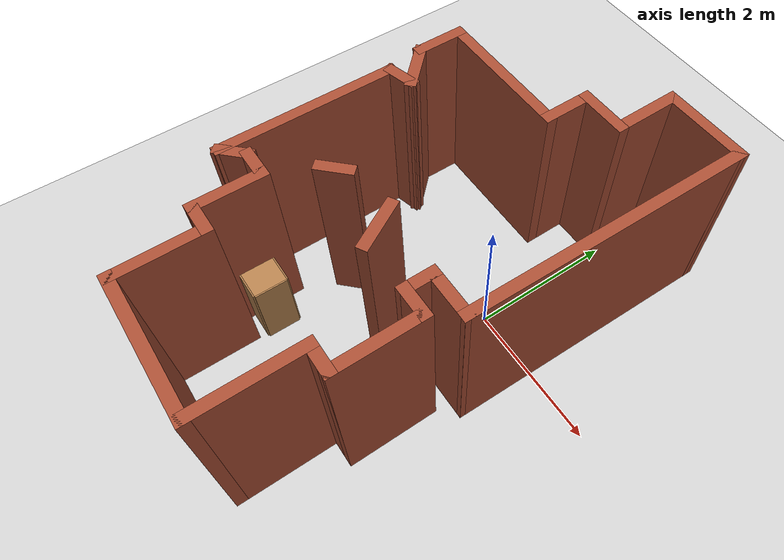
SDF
<sdf version="1.7">
 <world name="default">
  <light name="sun" type="directional">
   <pose>0 0 10 0 -0 0</pose>
   <diffuse>0.8 0.8 0.8 1</diffuse>
   <specular>0.2 0.2 0.2 1</specular>
   <attenuation>
    <range>1000</range>
    <constant>0.9</constant>
    <linear>0.01</linear>
    <quadratic>0.001</quadratic>
   </attenuation>
   <direction>-0.5 0.1 -0.9</direction>
   <spot><inner_angle>0</inner_angle><outer_angle>0</outer_angle><falloff>0</falloff></spot>
  </light>
  <model name="ground_plane">
   <static>1</static>
   <link name="link">
    <collision name="collision">
     <geometry><plane><normal>0 0 1</normal><size>100 100</size></plane></geometry>
     <surface>
      <contact><collide_bitmask>65535</collide_bitmask></contact>
      <friction><ode><mu>100</mu><mu2>50</mu2></ode></friction>
     </surface>
    </collision>
    <visual name="visual">
     <cast_shadows>0</cast_shadows>
     <geometry><plane><normal>0 0 1</normal><size>100 100</size></plane></geometry>
     <material>
      <script><uri>file://media/materials/scripts/gazebo.material</uri><name>Gazebo/Grey</name></script>
     </material>
    </visual>
   </link>
  </model>
  <gravity>0 0 -9.8</gravity>
  <magnetic_field>6e-06 2.3e-05 -4.2e-05</magnetic_field>
  <atmosphere type="adiabatic"/>
  <physics name="default_physics" default="0" type="ode">
   <max_step_size>0.001</max_step_size>
   <real_time_factor>1</real_time_factor>
   <real_time_update_rate>1000</real_time_update_rate>
  </physics>
  <scene><ambient>0.4 0.4 0.4 1</ambient><background>0.7 0.7 0.7 1</background><shadows>1</shadows></scene>
  <audio><device>default</device></audio>
  <spherical_coordinates>
   <surface_model>EARTH_WGS84</surface_model>
   <latitude_deg>0</latitude_deg>
   <longitude_deg>0</longitude_deg>
   <elevation>0</elevation>
   <heading_deg>0</heading_deg>
  </spherical_coordinates>
  <model name="map_2">
   <pose>-0.8371 -0.509078 0 0 -0 0</pose>
   <link name="Wall_10">
    <collision name="Wall_10_Collision">
     <geometry><box><size>2.5 0.15 2.5</size></box></geometry>
     <pose>0 0 1.25 0 -0 0</pose>
    </collision>
    <visual name="Wall_10_Visual">
     <pose>0 0 1.25 0 -0 0</pose>
     <geometry><box><size>2.5 0.15 2.5</size></box></geometry>
     <material>
      <script><uri>file://media/materials/scripts/gazebo.material</uri><name>Gazebo/Bricks</name></script>
      <ambient>1 1 1 1</ambient>
     </material>
     <meta><layer>0</layer></meta>
    </visual>
    <pose>-1.67392 -0.431815 0 0 -0 -1.5708</pose>
   </link>
   <link name="Wall_11">
    <collision name="Wall_11_Collision">
     <geometry><box><size>0.5 0.15 2.5</size></box></geometry>
     <pose>0 0 1.25 0 -0 0</pose>
    </collision>
    <visual name="Wall_11_Visual">
     <pose>0 0 1.25 0 -0 0</pose>
     <geometry><box><size>0.5 0.15 2.5</size></box></geometry>
     <material>
      <script><uri>file://media/materials/scripts/gazebo.material</uri><name>Gazebo/Bricks</name></script>
      <ambient>1 1 1 1</ambient>
     </material>
     <meta><layer>0</layer></meta>
    </visual>
    <pose>-1.55018 -1.48307 0 0 -0 0.785398</pose>
   </link>
   <link name="Wall_12">
    <collision name="Wall_12_Collision">
     <geometry><box><size>0.5 0.15 2.5</size></box></geometry>
     <pose>0 0 1.25 0 -0 0</pose>
    </collision>
    <visual name="Wall_12_Visual">
     <pose>0 0 1.25 0 -0 0</pose>
     <geometry><box><size>0.5 0.15 2.5</size></box></geometry>
     <material>
      <script><uri>file://media/materials/scripts/gazebo.material</uri><name>Gazebo/Bricks</name></script>
      <ambient>1 1 1 1</ambient>
     </material>
     <meta><layer>0</layer></meta>
    </visual>
    <pose>-1.25144 -1.35933 0 0 -0 0</pose>
   </link>
   <link name="Wall_13">
    <collision name="Wall_13_Collision">
     <geometry><box><size>1 0.15 2.5</size></box></geometry>
     <pose>0 0 1.25 0 -0 0</pose>
    </collision>
    <visual name="Wall_13_Visual">
     <pose>0 0 1.25 0 -0 0</pose>
     <geometry><box><size>1 0.15 2.5</size></box></geometry>
     <material>
      <script><uri>file://media/materials/scripts/gazebo.material</uri><name>Gazebo/Bricks</name></script>
      <ambient>1 1 1 1</ambient>
     </material>
     <meta><layer>0</layer></meta>
    </visual>
    <pose>-1.07644 -1.78433 0 0 -0 -1.5708</pose>
   </link>
   <link name="Wall_14">
    <collision name="Wall_14_Collision">
     <geometry><box><size>0.5 0.15 2.5</size></box></geometry>
     <pose>0 0 1.25 0 -0 0</pose>
    </collision>
    <visual name="Wall_14_Visual">
     <pose>0 0 1.25 0 -0 0</pose>
     <geometry><box><size>0.5 0.15 2.5</size></box></geometry>
     <material>
      <script><uri>file://media/materials/scripts/gazebo.material</uri><name>Gazebo/Bricks</name></script>
      <ambient>1 1 1 1</ambient>
     </material>
     <meta><layer>0</layer></meta>
    </visual>
    <pose>-0.901435 -2.20933 0 0 -0 0</pose>
   </link>
   <link name="Wall_15">
    <collision name="Wall_15_Collision">
     <geometry><box><size>1.25 0.15 2.5</size></box></geometry>
     <pose>0 0 1.25 0 -0 0</pose>
    </collision>
    <visual name="Wall_15_Visual">
     <pose>0 0 1.25 0 -0 0</pose>
     <geometry><box><size>1.25 0.15 2.5</size></box></geometry>
     <material>
      <script><uri>file://media/materials/scripts/gazebo.material</uri><name>Gazebo/Bricks</name></script>
      <ambient>1 1 1 1</ambient>
     </material>
     <meta><layer>0</layer></meta>
    </visual>
    <pose>-0.726435 -2.75933 0 0 -0 -1.5708</pose>
   </link>
   <link name="Wall_16">
    <collision name="Wall_16_Collision">
     <geometry><box><size>2 0.15 2.5</size></box></geometry>
     <pose>0 0 1.25 0 -0 0</pose>
    </collision>
    <visual name="Wall_16_Visual">
     <pose>0 0 1.25 0 -0 0</pose>
     <geometry><box><size>2 0.15 2.5</size></box></geometry>
     <material>
      <script><uri>file://media/materials/scripts/gazebo.material</uri><name>Gazebo/Bricks</name></script>
      <ambient>1 1 1 1</ambient>
     </material>
     <meta><layer>0</layer></meta>
    </visual>
    <pose>0.198565 -3.30933 0 0 -0 0</pose>
   </link>
   <link name="Wall_17">
    <collision name="Wall_17_Collision">
     <geometry><box><size>1.5 0.15 2.5</size></box></geometry>
     <pose>0 0 1.25 0 -0 0</pose>
    </collision>
    <visual name="Wall_17_Visual">
     <pose>0 0 1.25 0 -0 0</pose>
     <geometry><box><size>1.5 0.15 2.5</size></box></geometry>
     <material>
      <script><uri>file://media/materials/scripts/gazebo.material</uri><name>Gazebo/Bricks</name></script>
      <ambient>1 1 1 1</ambient>
     </material>
     <meta><layer>0</layer></meta>
    </visual>
    <pose>1.12356 -2.63433 0 0 -0 1.5708</pose>
   </link>
   <link name="Wall_18">
    <collision name="Wall_18_Collision">
     <geometry><box><size>0.5 0.15 2.5</size></box></geometry>
     <pose>0 0 1.25 0 -0 0</pose>
    </collision>
    <visual name="Wall_18_Visual">
     <pose>0 0 1.25 0 -0 0</pose>
     <geometry><box><size>0.5 0.15 2.5</size></box></geometry>
     <material>
      <script><uri>file://media/materials/scripts/gazebo.material</uri><name>Gazebo/Bricks</name></script>
      <ambient>1 1 1 1</ambient>
     </material>
     <meta><layer>0</layer></meta>
    </visual>
    <pose>1.29856 -1.95933 0 0 -0 0</pose>
   </link>
   <link name="Wall_19">
    <collision name="Wall_19_Collision">
     <geometry><box><size>1.25 0.15 2.5</size></box></geometry>
     <pose>0 0 1.25 0 -0 0</pose>
    </collision>
    <visual name="Wall_19_Visual">
     <pose>0 0 1.25 0 -0 0</pose>
     <geometry><box><size>1.25 0.15 2.5</size></box></geometry>
     <material>
      <script><uri>file://media/materials/scripts/gazebo.material</uri><name>Gazebo/Bricks</name></script>
      <ambient>1 1 1 1</ambient>
     </material>
     <meta><layer>0</layer></meta>
    </visual>
    <pose>1.47357 -1.40933 0 0 -0 1.5708</pose>
   </link>
   <link name="Wall_2">
    <collision name="Wall_2_Collision">
     <geometry><box><size>1.25 0.15 2.5</size></box></geometry>
     <pose>0 0 1.25 0 -0 0</pose>
    </collision>
    <visual name="Wall_2_Visual">
     <pose>0 0 1.25 0 -0 0</pose>
     <geometry><box><size>1.25 0.15 2.5</size></box></geometry>
     <material>
      <script><uri>file://media/materials/scripts/gazebo.material</uri><name>Gazebo/Bricks</name></script>
      <ambient>1 1 1 1</ambient>
     </material>
     <meta><layer>0</layer></meta>
    </visual>
    <pose>1.23989 3.30804 0 0 -0 3.14159</pose>
   </link>
   <link name="Wall_20">
    <collision name="Wall_20_Collision">
     <geometry><box><size>0.5 0.15 2.5</size></box></geometry>
     <pose>0 0 1.25 0 -0 0</pose>
    </collision>
    <visual name="Wall_20_Visual">
     <pose>0 0 1.25 0 -0 0</pose>
     <geometry><box><size>0.5 0.15 2.5</size></box></geometry>
     <material>
      <script><uri>file://media/materials/scripts/gazebo.material</uri><name>Gazebo/Bricks</name></script>
      <ambient>1 1 1 1</ambient>
     </material>
     <meta><layer>0</layer></meta>
    </visual>
    <pose>1.29856 -0.859327 0 0 -0 3.14159</pose>
   </link>
   <link name="Wall_21">
    <collision name="Wall_21_Collision">
     <geometry><box><size>0.5 0.15 2.5</size></box></geometry>
     <pose>0 0 1.25 0 -0 0</pose>
    </collision>
    <visual name="Wall_21_Visual">
     <pose>0 0 1.25 0 -0 0</pose>
     <geometry><box><size>0.5 0.15 2.5</size></box></geometry>
     <material>
      <script><uri>file://media/materials/scripts/gazebo.material</uri><name>Gazebo/Bricks</name></script>
      <ambient>1 1 1 1</ambient>
     </material>
     <meta><layer>0</layer></meta>
    </visual>
    <pose>1.12356 -0.684327 0 0 -0 1.5708</pose>
   </link>
   <link name="Wall_24">
    <collision name="Wall_24_Collision">
     <geometry><box><size>0.75 0.15 2.5</size></box></geometry>
     <pose>0 0 1.25 0 -0 0</pose>
    </collision>
    <visual name="Wall_24_Visual">
     <pose>0 0 1.25 0 -0 0</pose>
     <geometry><box><size>0.75 0.15 2.5</size></box></geometry>
     <material>
      <script><uri>file://media/materials/scripts/gazebo.material</uri><name>Gazebo/Bricks</name></script>
      <ambient>1 1 1 1</ambient>
     </material>
     <meta><layer>0</layer></meta>
    </visual>
    <pose>1.42356 -0.509327 0 0 -0 0</pose>
   </link>
   <link name="Wall_25">
    <collision name="Wall_25_Collision">
     <geometry><box><size>3.96794 0.15 2.5</size></box></geometry>
     <pose>0 0 1.25 0 -0 0</pose>
    </collision>
    <visual name="Wall_25_Visual">
     <pose>0 0 1.25 0 -0 0</pose>
     <geometry><box><size>3.96794 0.15 2.5</size></box></geometry>
     <material>
      <script><uri>file://media/materials/scripts/gazebo.material</uri><name>Gazebo/Bricks</name></script>
      <ambient>1 1 1 1</ambient>
     </material>
     <meta><layer>0</layer></meta>
    </visual>
    <pose>1.75673 1.39935 0 0 -0 1.55342</pose>
   </link>
   <link name="Wall_27">
    <collision name="Wall_27_Collision">
     <geometry><box><size>0.5 0.15 2.5</size></box></geometry>
     <pose>0 0 1.25 0 -0 0</pose>
    </collision>
    <visual name="Wall_27_Visual">
     <pose>0 0 1.25 0 -0 0</pose>
     <geometry><box><size>0.5 0.15 2.5</size></box></geometry>
     <material>
      <script><uri>file://media/materials/scripts/gazebo.material</uri><name>Gazebo/Bricks</name></script>
      <ambient>1 1 1 1</ambient>
     </material>
     <meta><layer>0</layer></meta>
    </visual>
    <pose>-0.676997 -0.639207 0 0 -0 0.785398</pose>
   </link>
   <link name="Wall_29">
    <collision name="Wall_29_Collision">
     <geometry><box><size>0.75 0.15 2.5</size></box></geometry>
     <pose>0 0 1.25 0 -0 0</pose>
    </collision>
    <visual name="Wall_29_Visual">
     <pose>0 0 1.25 0 -0 0</pose>
     <geometry><box><size>0.75 0.15 2.5</size></box></geometry>
     <material>
      <script><uri>file://media/materials/scripts/gazebo.material</uri><name>Gazebo/Bricks</name></script>
      <ambient>1 1 1 1</ambient>
     </material>
     <meta><layer>0</layer></meta>
    </visual>
    <pose>0.274484 -0.652669 0 0 -0 -1.0472</pose>
   </link>
   <link name="Wall_3">
    <collision name="Wall_3_Collision">
     <geometry><box><size>1 0.15 2.5</size></box></geometry>
     <pose>0 0 1.25 0 -0 0</pose>
    </collision>
    <visual name="Wall_3_Visual">
     <pose>0 0 1.25 0 -0 0</pose>
     <geometry><box><size>1 0.15 2.5</size></box></geometry>
     <material>
      <script><uri>file://media/materials/scripts/gazebo.material</uri><name>Gazebo/Bricks</name></script>
      <ambient>1 1 1 1</ambient>
     </material>
     <meta><layer>0</layer></meta>
    </visual>
    <pose>0.689887 2.88304 0 0 -0 -1.5708</pose>
   </link>
   <link name="Wall_4">
    <collision name="Wall_4_Collision">
     <geometry><box><size>0.75 0.15 2.5</size></box></geometry>
     <pose>0 0 1.25 0 -0 0</pose>
    </collision>
    <visual name="Wall_4_Visual">
     <pose>0 0 1.25 0 -0 0</pose>
     <geometry><box><size>0.75 0.15 2.5</size></box></geometry>
     <material>
      <script><uri>file://media/materials/scripts/gazebo.material</uri><name>Gazebo/Bricks</name></script>
      <ambient>1 1 1 1</ambient>
     </material>
     <meta><layer>0</layer></meta>
    </visual>
    <pose>0.389887 2.45804 0 0 -0 3.14159</pose>
   </link>
   <link name="Wall_5">
    <collision name="Wall_5_Collision">
     <geometry><box><size>0.75 0.15 2.5</size></box></geometry>
     <pose>0 0 1.25 0 -0 0</pose>
    </collision>
    <visual name="Wall_5_Visual">
     <pose>0 0 1.25 0 -0 0</pose>
     <geometry><box><size>0.75 0.15 2.5</size></box></geometry>
     <material>
      <script><uri>file://media/materials/scripts/gazebo.material</uri><name>Gazebo/Bricks</name></script>
      <ambient>1 1 1 1</ambient>
     </material>
     <meta><layer>0</layer></meta>
    </visual>
    <pose>0.089887 2.15804 0 0 -0 -1.5708</pose>
   </link>
   <link name="Wall_6">
    <collision name="Wall_6_Collision">
     <geometry><box><size>2 0.15 2.5</size></box></geometry>
     <pose>0 0 1.25 0 -0 0</pose>
    </collision>
    <visual name="Wall_6_Visual">
     <pose>0 0 1.25 0 -0 0</pose>
     <geometry><box><size>2 0.15 2.5</size></box></geometry>
     <material>
      <script><uri>file://media/materials/scripts/gazebo.material</uri><name>Gazebo/Bricks</name></script>
      <ambient>1 1 1 1</ambient>
     </material>
     <meta><layer>0</layer></meta>
    </visual>
    <pose>-0.835113 1.85804 0 0 -0 3.14159</pose>
   </link>
   <link name="Wall_7">
    <collision name="Wall_7_Collision">
     <geometry><box><size>0.75 0.15 2.5</size></box></geometry>
     <pose>0 0 1.25 0 -0 0</pose>
    </collision>
    <visual name="Wall_7_Visual">
     <pose>0 0 1.25 0 -0 0</pose>
     <geometry><box><size>0.75 0.15 2.5</size></box></geometry>
     <material>
      <script><uri>file://media/materials/scripts/gazebo.material</uri><name>Gazebo/Bricks</name></script>
      <ambient>1 1 1 1</ambient>
     </material>
     <meta><layer>0</layer></meta>
    </visual>
    <pose>-1.76011 1.55804 0 0 -0 -1.5708</pose>
   </link>
   <link name="Wall_8">
    <collision name="Wall_8_Collision">
     <geometry><box><size>0.75 0.15 2.5</size></box></geometry>
     <pose>0 0 1.25 0 -0 0</pose>
    </collision>
    <visual name="Wall_8_Visual">
     <pose>0 0 1.25 0 -0 0</pose>
     <geometry><box><size>0.75 0.15 2.5</size></box></geometry>
     <material>
      <script><uri>file://media/materials/scripts/gazebo.material</uri><name>Gazebo/Bricks</name></script>
      <ambient>1 1 1 1</ambient>
     </material>
     <meta><layer>0</layer></meta>
    </visual>
    <pose>-1.54798 1.0459 0 0 -0 -0.785398</pose>
   </link>
   <link name="Wall_9">
    <collision name="Wall_9_Collision">
     <geometry><box><size>0.5 0.15 2.5</size></box></geometry>
     <pose>0 0 1.25 0 -0 0</pose>
    </collision>
    <visual name="Wall_9_Visual">
     <pose>0 0 1.25 0 -0 0</pose>
     <geometry><box><size>0.5 0.15 2.5</size></box></geometry>
     <material>
      <script><uri>file://media/materials/scripts/gazebo.material</uri><name>Gazebo/Bricks</name></script>
      <ambient>1 1 1 1</ambient>
     </material>
     <meta><layer>0</layer></meta>
    </visual>
    <pose>-1.50489 0.788479 0 0 -0 -2.87979</pose>
   </link>
   <static>1</static>
  </model>
  <model name="cabinet">
   <static>1</static>
   <link name="cabinet_bottom_plate">
    <inertial>
     <pose>0 0 -1 0 -0 0</pose>
     <inertia><ixx>2.05</ixx><ixy>0</ixy><ixz>0</ixz><iyy>2.05</iyy><iyz>0</iyz><izz>2.05</izz></inertia>
     <mass>25</mass>
    </inertial>
    <collision name="cabinet_bottom_plate_geom">
     <pose>0 0 0.01 0 -0 0</pose>
     <geometry><box><size>0.45 0.45 0.02</size></box></geometry>
    </collision>
    <visual name="cabinet_bottom_plate_geom_visual">
     <pose>0 0 0.01 0 -0 0</pose>
     <geometry><box><size>0.45 0.45 0.02</size></box></geometry>
     <material>
      <script><uri>file://media/materials/scripts/gazebo.material</uri><name>Gazebo/Wood</name></script>
     </material>
    </visual>
    <collision name="cabinet_bottom_plate_geom_cabinet_back_plate">
     <pose>0.235 0 0.51 0 -0 0</pose>
     <geometry><box><size>0.02 0.45 1.02</size></box></geometry>
    </collision>
    <visual name="cabinet_bottom_plate_geom_cabinet_back_plate_visual">
     <pose>0.235 0 0.51 0 -0 0</pose>
     <geometry><box><size>0.02 0.45 1.02</size></box></geometry>
     <material>
      <script><uri>file://media/materials/scripts/gazebo.material</uri><name>Gazebo/Wood</name></script>
     </material>
    </visual>
    <collision name="cabinet_bottom_plate_geom_cabinet_left_plate">
     <pose>0 0.235 0.51 0 -0 0</pose>
     <geometry><box><size>0.45 0.02 1.02</size></box></geometry>
    </collision>
    <visual name="cabinet_bottom_plate_geom_cabinet_left_plate_visual">
     <pose>0 0.235 0.51 0 -0 0</pose>
     <geometry><box><size>0.45 0.02 1.02</size></box></geometry>
     <material>
      <script><uri>file://media/materials/scripts/gazebo.material</uri><name>Gazebo/Wood</name></script>
     </material>
    </visual>
    <collision name="cabinet_bottom_plate_geom_cabinet_middle_plate">
     <pose>0 0 0.51 0 -0 0</pose>
     <geometry><box><size>0.45 0.45 0.02</size></box></geometry>
    </collision>
    <visual name="cabinet_bottom_plate_geom_cabinet_middle_plate_visual">
     <pose>0 0 0.51 0 -0 0</pose>
     <geometry><box><size>0.45 0.45 0.02</size></box></geometry>
     <material>
      <script><uri>file://media/materials/scripts/gazebo.material</uri><name>Gazebo/Wood</name></script>
     </material>
    </visual>
    <collision name="cabinet_bottom_plate_geom_cabinet_right_plate">
     <pose>0 -0.235 0.51 0 -0 0</pose>
     <geometry><box><size>0.45 0.02 1.02</size></box></geometry>
    </collision>
    <visual name="cabinet_bottom_plate_geom_cabinet_right_plate_visual">
     <pose>0 -0.235 0.51 0 -0 0</pose>
     <geometry><box><size>0.45 0.02 1.02</size></box></geometry>
     <material>
      <script><uri>file://media/materials/scripts/gazebo.material</uri><name>Gazebo/Wood</name></script>
     </material>
    </visual>
    <collision name="cabinet_bottom_plate_geom_cabinet_top_plate">
     <pose>0 0 1.01 0 -0 0</pose>
     <geometry><box><size>0.45 0.45 0.02</size></box></geometry>
    </collision>
    <visual name="cabinet_bottom_plate_geom_cabinet_top_plate_visual">
     <pose>0 0 1.01 0 -0 0</pose>
     <geometry><box><size>0.45 0.45 0.02</size></box></geometry>
     <material>
      <script><uri>file://media/materials/scripts/gazebo.material</uri><name>Gazebo/Wood</name></script>
     </material>
    </visual>
   </link>
   <pose>-1.6787 -2.29917 0 0 -0 0</pose>
  </model>
  <model name="6_Cube_StorageE">
   <link name="Wall_0">
    <pose>0 0 0.01 0 -0 0</pose>
    <inertial>
     <mass>1.6201</mass>
     <inertia><ixx>0.0119</ixx><iyy>0.0631</iyy><izz>0.0513</izz><ixy>0</ixy><ixz>0</ixz><iyz>0</iyz></inertia>
    </inertial>
    <collision name="Wall_0_Collision"><geometry><box><size>0.616 0.296 0.02</size></box></geometry></collision>
    <visual name="Wall_0_Visual">
     <geometry><box><size>0.616 0.296 0.02</size></box></geometry>
     <material>
      <script><uri>file://media/materials/scripts/gazebo.material</uri><name>Gazebo/Grey</name></script>
      <ambient>0.105882 0.0509804 0 1</ambient>
     </material>
    </visual>
   </link>
   <joint name="0_2" type="fixed">
    <pose>-0.308 0 0 0 -0 0</pose>
    <parent>Wall_2</parent>
    <child>Wall_0</child>
    <axis><xyz>1 0 0</xyz><limit><lower>-1e+16</lower><upper>1e+16</upper></limit></axis>
   </joint>
   <joint name="0_12" type="fixed">
    <parent>Wall_12</parent>
    <child>Wall_0</child>
    <axis><xyz>0 0 1</xyz><limit><lower>-1e+16</lower><upper>1e+16</upper></limit></axis>
   </joint>
   <joint name="0_4" type="fixed">
    <pose>0.308 0 0 0 -0 0</pose>
    <parent>Wall_4</parent>
    <child>Wall_0</child>
    <axis><xyz>1 0 0</xyz><limit><lower>-1e+16</lower><upper>1e+16</upper></limit></axis>
   </joint>
   <link name="Wall_10">
    <pose>0 0 0.61 0 -0 0</pose>
    <inertial>
     <mass>1.6201</mass>
     <inertia><ixx>0.0119</ixx><iyy>0.0631</iyy><izz>0.0513</izz><ixy>0</ixy><ixz>0</ixz><iyz>0</iyz></inertia>
    </inertial>
    <collision name="Wall_10_Collision"><geometry><box><size>0.616 0.296 0.02</size></box></geometry></collision>
    <visual name="Wall_10_Visual">
     <geometry><box><size>0.616 0.296 0.02</size></box></geometry>
     <material>
      <script><uri>file://media/materials/scripts/gazebo.material</uri><name>Gazebo/Grey</name></script>
      <ambient>0.105882 0.0509804 0 1</ambient>
     </material>
    </visual>
   </link>
   <joint name="10_2" type="fixed">
    <pose>-0.308 0 0 0 -0 0</pose>
    <parent>Wall_2</parent>
    <child>Wall_10</child>
    <axis><xyz>1 0 0</xyz><limit><lower>-1e+16</lower><upper>1e+16</upper></limit></axis>
   </joint>
   <joint name="10_12" type="fixed">
    <parent>Wall_12</parent>
    <child>Wall_10</child>
    <axis><xyz>0 0 1</xyz><limit><lower>-1e+16</lower><upper>1e+16</upper></limit></axis>
   </joint>
   <joint name="10_4" type="fixed">
    <pose>0.308 0 0 0 -0 0</pose>
    <parent>Wall_4</parent>
    <child>Wall_10</child>
    <axis><xyz>1 0 0</xyz><limit><lower>-1e+16</lower><upper>1e+16</upper></limit></axis>
   </joint>
   <link name="Wall_12">
    <pose>0 0 0.4575 0 -0 0</pose>
    <inertial>
     <mass>2.4065</mass>
     <inertia><ixx>0.0177</ixx><iyy>0.1855</iyy><izz>0.168</izz><ixy>0</ixy><ixz>0</ixz><iyz>0</iyz></inertia>
    </inertial>
    <collision name="Wall_12_Collision"><geometry><box><size>0.02 0.296 0.915</size></box></geometry></collision>
    <visual name="Wall_12_Visual">
     <geometry><box><size>0.02 0.296 0.915</size></box></geometry>
     <material>
      <script><uri>file://media/materials/scripts/gazebo.material</uri><name>Gazebo/Grey</name></script>
      <ambient>0.105882 0.0509804 0 1</ambient>
     </material>
    </visual>
   </link>
   <link name="Wall_2">
    <pose>-0.298 0 0.4575 0 -0 0</pose>
    <inertial>
     <mass>2.4065</mass>
     <inertia><ixx>0.0177</ixx><iyy>0.1855</iyy><izz>0.168</izz><ixy>0</ixy><ixz>0</ixz><iyz>0</iyz></inertia>
    </inertial>
    <collision name="Wall_2_Collision"><geometry><box><size>0.02 0.296 0.915</size></box></geometry></collision>
    <visual name="Wall_2_Visual">
     <geometry><box><size>0.02 0.296 0.915</size></box></geometry>
     <material>
      <script><uri>file://media/materials/scripts/gazebo.material</uri><name>Gazebo/Grey</name></script>
      <ambient>0.105882 0.0509804 0 1</ambient>
     </material>
    </visual>
   </link>
   <link name="Wall_4">
    <pose>0.298 0 0.4575 0 -0 0</pose>
    <inertial>
     <mass>2.4065</mass>
     <inertia><ixx>0.0177</ixx><iyy>0.1855</iyy><izz>0.168</izz><ixy>0</ixy><ixz>0</ixz><iyz>0</iyz></inertia>
    </inertial>
    <collision name="Wall_4_Collision"><geometry><box><size>0.02 0.296 0.915</size></box></geometry></collision>
    <visual name="Wall_4_Visual">
     <geometry><box><size>0.02 0.296 0.915</size></box></geometry>
     <material>
      <script><uri>file://media/materials/scripts/gazebo.material</uri><name>Gazebo/Grey</name></script>
      <ambient>0.105882 0.0509804 0 1</ambient>
     </material>
    </visual>
   </link>
   <link name="Wall_6">
    <pose>0 0 0.905 0 -0 0</pose>
    <inertial>
     <mass>1.6201</mass>
     <inertia><ixx>0.0119</ixx><iyy>0.0631</iyy><izz>0.0513</izz><ixy>0</ixy><ixz>0</ixz><iyz>0</iyz></inertia>
    </inertial>
    <collision name="Wall_6_Collision"><geometry><box><size>0.616 0.296 0.02</size></box></geometry></collision>
    <visual name="Wall_6_Visual">
     <geometry><box><size>0.616 0.296 0.02</size></box></geometry>
     <material>
      <script><uri>file://media/materials/scripts/gazebo.material</uri><name>Gazebo/Grey</name></script>
      <ambient>0.105882 0.0509804 0 1</ambient>
     </material>
    </visual>
   </link>
   <joint name="6_2" type="fixed">
    <pose>-0.308 0 0 0 -0 0</pose>
    <parent>Wall_2</parent>
    <child>Wall_6</child>
    <axis><xyz>2 0 0</xyz><limit><lower>-1e+16</lower><upper>1e+16</upper></limit></axis>
   </joint>
   <joint name="6_12" type="fixed">
    <parent>Wall_12</parent>
    <child>Wall_6</child>
    <axis><xyz>0 0 1</xyz><limit><lower>-1e+16</lower><upper>1e+16</upper></limit></axis>
   </joint>
   <joint name="6_4" type="fixed">
    <pose>0.308 0 0 0 -0 0</pose>
    <parent>Wall_4</parent>
    <child>Wall_6</child>
    <axis><xyz>1 0 0</xyz><limit><lower>-1e+16</lower><upper>1e+16</upper></limit></axis>
   </joint>
   <link name="Wall_8">
    <pose>0 0 0.305 0 -0 0</pose>
    <inertial>
     <mass>1.6201</mass>
     <inertia><ixx>0.0119</ixx><iyy>0.0631</iyy><izz>0.0513</izz><ixy>0</ixy><ixz>0</ixz><iyz>0</iyz></inertia>
    </inertial>
    <collision name="Wall_8_Collision"><geometry><box><size>0.616 0.296 0.02</size></box></geometry></collision>
    <visual name="Wall_8_Visual">
     <geometry><box><size>0.616 0.296 0.02</size></box></geometry>
     <material>
      <script><uri>file://media/materials/scripts/gazebo.material</uri><name>Gazebo/Grey</name></script>
      <ambient>0.105882 0.0509804 0 1</ambient>
     </material>
    </visual>
   </link>
   <joint name="8_2" type="fixed">
    <pose>-0.308 0 0 0 -0 0</pose>
    <parent>Wall_2</parent>
    <child>Wall_8</child>
    <axis><xyz>1 0 0</xyz><limit><lower>-1e+16</lower><upper>1e+16</upper></limit></axis>
   </joint>
   <joint name="8_12" type="fixed">
    <parent>Wall_12</parent>
    <child>Wall_8</child>
    <axis><xyz>0 0 1</xyz><limit><lower>-1e+16</lower><upper>1e+16</upper></limit></axis>
   </joint>
   <joint name="8_4" type="fixed">
    <pose>0.308 0 0 0 -0 0</pose>
    <parent>Wall_4</parent>
    <child>Wall_8</child>
    <axis><xyz>1 0 0</xyz><limit><lower>-1e+16</lower><upper>1e+16</upper></limit></axis>
   </joint>
   <static>1</static>
   <pose>0.508587 1.16838 0 0 -0 0</pose>
  </model>
 </world>
</sdf>
